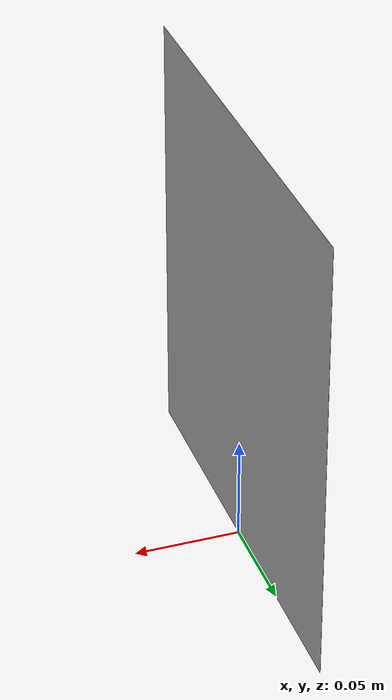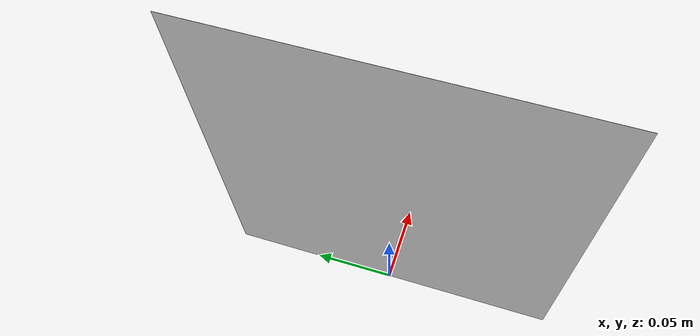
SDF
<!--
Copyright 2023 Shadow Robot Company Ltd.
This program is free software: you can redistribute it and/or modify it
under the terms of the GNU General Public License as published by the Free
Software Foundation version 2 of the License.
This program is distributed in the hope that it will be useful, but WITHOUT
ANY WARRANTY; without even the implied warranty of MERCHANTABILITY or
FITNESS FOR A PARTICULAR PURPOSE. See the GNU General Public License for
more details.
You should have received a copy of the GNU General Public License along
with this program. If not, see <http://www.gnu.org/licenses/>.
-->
<?xml version="1.0" ?><sdf version="1.6">

  <model name="ar_marker_a4">
    <static>true</static>
    <link name="link">
      <visual name="visual">
        <geometry>
          <mesh>
            <uri>model://ar_marker_a4/meshes/ar_marker_a4.dae</uri>
          <scale>0.01 0.42 0.42</scale></mesh>
        </geometry>
      </visual>
    </link>
  </model>
</sdf>
